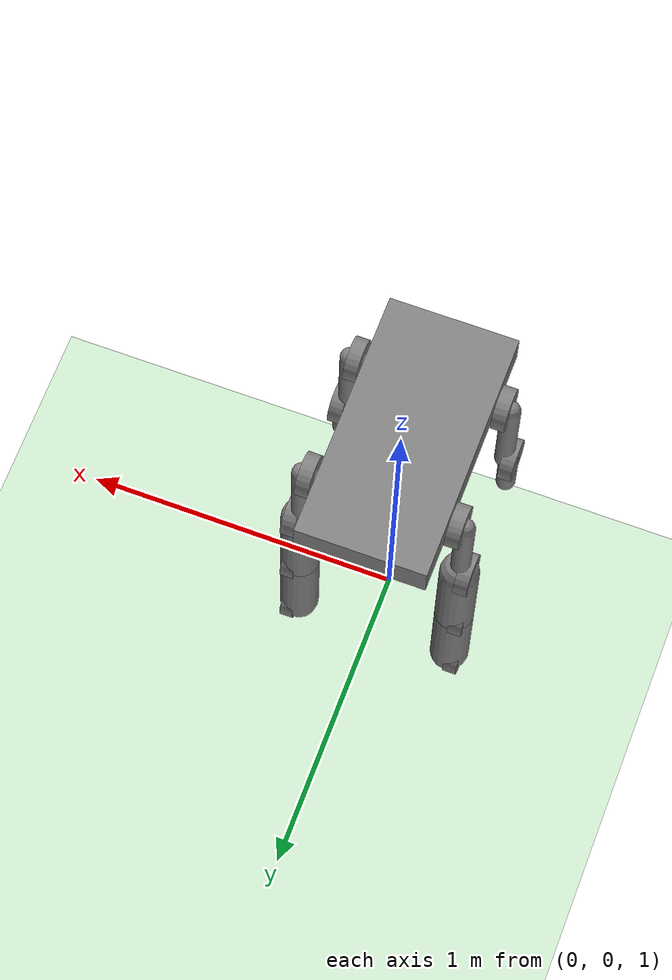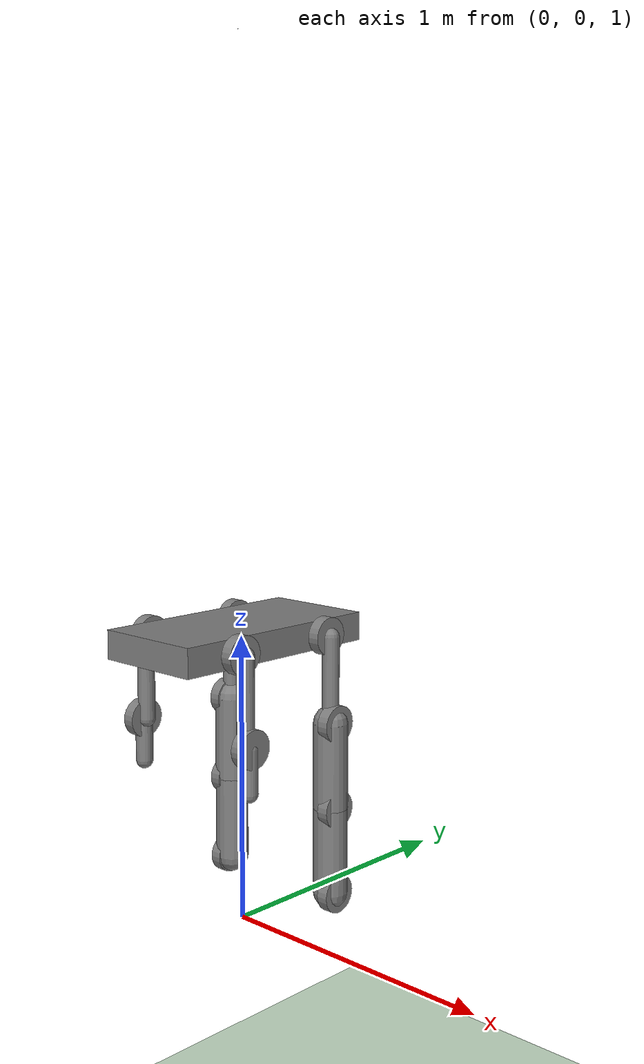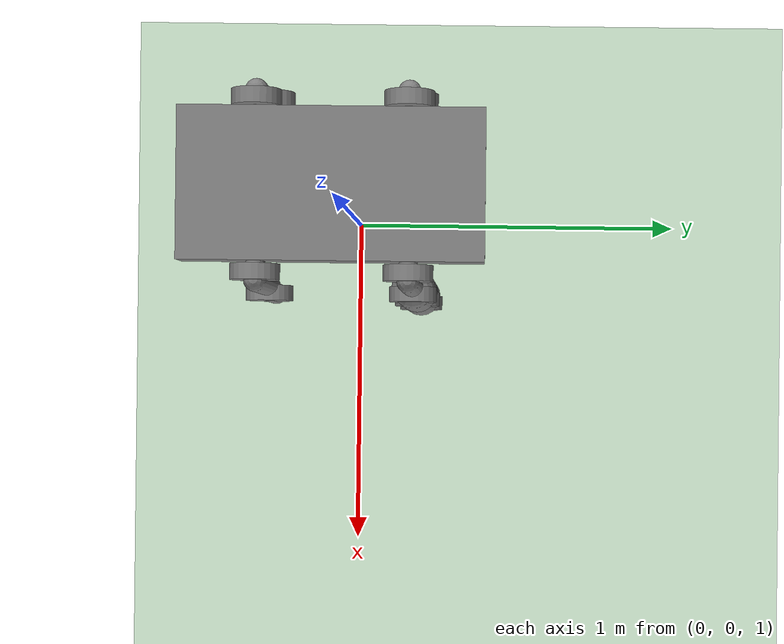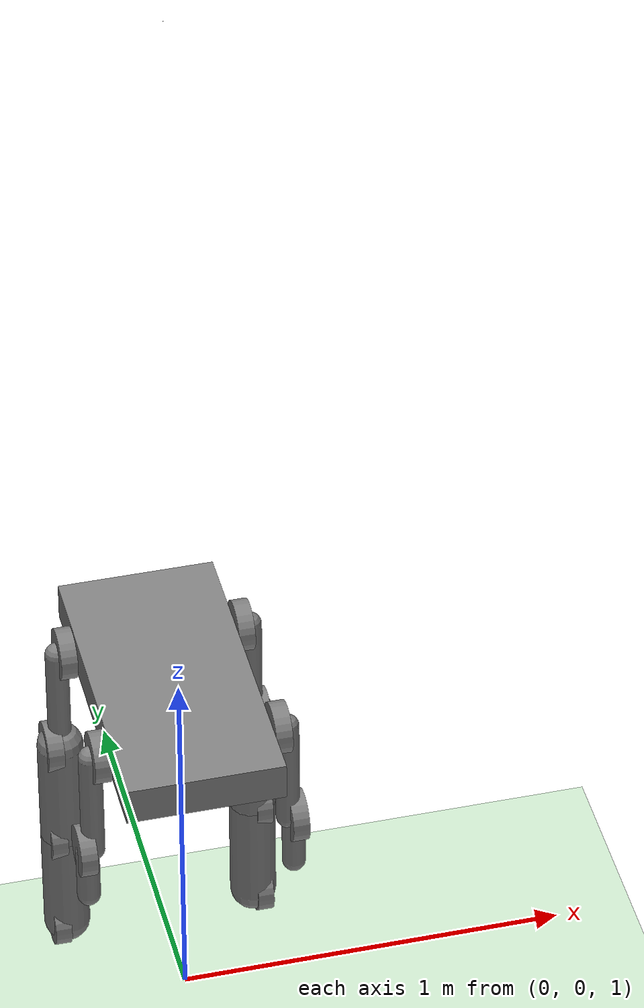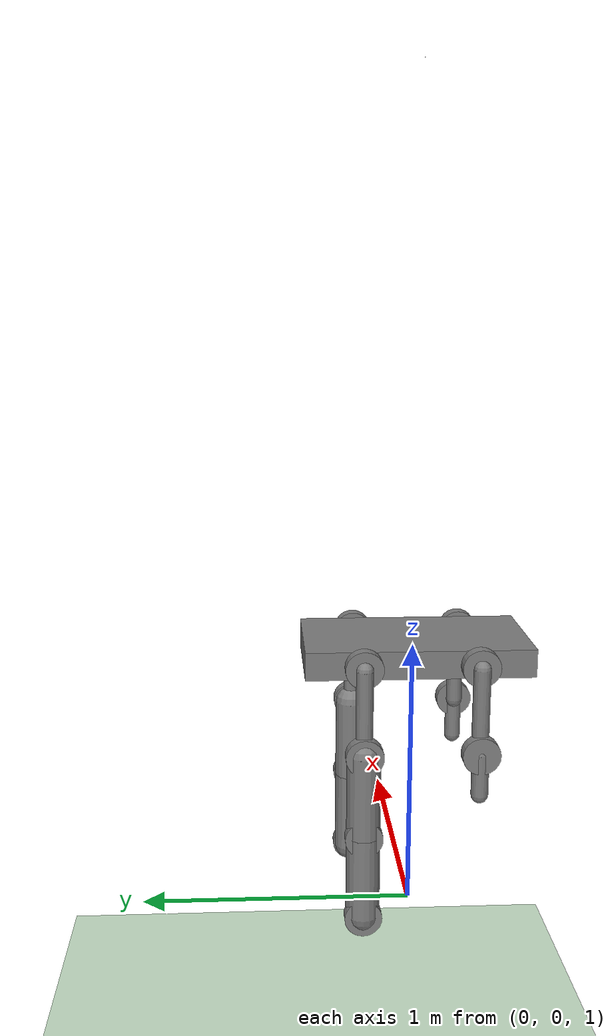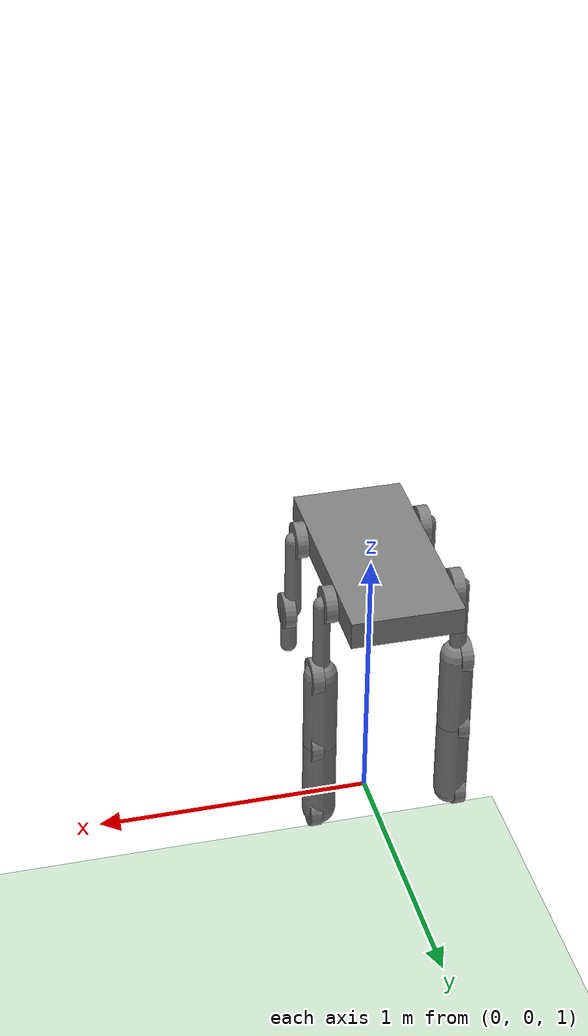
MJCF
<mujoco model="xmlrobot">
	<compiler />
	<option gravity="0 0 0" />
	<size nconmax="500" njmax="1000" />
	<custom />
	<default>
		<default class="body">
			<geom condim="1" friction="1.0 0.05 0.05" solimp=".9 .99 .003" solref=".015 1" type="capsule" />
			<joint armature=".006" damping="1.0" limited="true" stiffness="2" />
		</default>
		<default class="joint">
			<joint armature=".006" damping="1.0" limited="true" stiffness="2" />
		</default>
	</default>
	<asset>
		<texture builtin="gradient" height="100" rgb1="1 1 1" rgb2="0 0 0" type="skybox" width="100" />
		<texture builtin="flat" height="1278" mark="cross" markrgb="1 1 1" name="texgeom" random="0.01" rgb1="0.8 0.6 0.4" rgb2="0.8 0.6 0.4" type="cube" width="127" />
		<texture builtin="checker" height="100" name="texplane" rgb1="0 0 0" rgb2="0.8 0.8 0.8" type="2d" width="100" />
		<material name="MatPlane" reflectance="0.5" shininess="1" specular="1" texrepeat="60 60" texture="texplane" />
		<material name="geom" texture="texgeom" texuniform="true" />
	</asset>
	<worldbody>
		<light cutoff="100" diffuse="1 1 1" dir="0 0 -1.3" directional="true" exponent="1" pos="0 0 1.3" specular="0.1 0.1 0.1" />
		<geom conaffinity="1" condim="3" material="MatPlane" name="floor" pos="0 0 0" rgba="0.8 0.9 0.8 1" size="40 40 40" type="plane" />
		<body name="root" pos="0 0 2" quat="1.0 0.0 0.0 0.0">
			<geom name="geomroot" pos="0 0 2" quat="1.0 0.0 0.0 0.0" size="0.0005" type="sphere" />
			<body name="body1" pos="0 0 0" quat="1.0 0.0 0.0 0.0">
				<geom name="geombody1" pos="-0.02 0 0" quat="1.0 0.0 0.0 0.0" size="0.2 0.4 0.05" type="box" />
				<joint axis="1 0 0" class="joint" name="joint_joint1" pos="0 0 0" range="-0.0001 0.0001" type="hinge" />
				<body name="limbmount4" pos="0.1875 -0.2 0" quat="0.70711 0.0 0.70711 0.0">
					<geom fromto="0 0 0 0.025 0 0" name="geomlimbmount4" quat="1.0 0.0 0.0 0.0" size="0.025" type="capsule" />
					<joint axis="0 1 0" class="joint" name="joint_joint5" pos="0 0 0" range="-45 45" type="hinge" />
					<body name="limbmount4_new_new" pos="0 0 0" quat="0.70711 0.0 -0.70711 0.0">
						<geom euler="0 0 0" fromto="0 0 0 0.042 0 0" name="geomlimbmount4_new_new" pos="0 0 0" size="0.066" type="cylinder" />
						<joint axis="1 0 0" class="joint" name="joint_limbmount4_new" pos="0 0 0" range="-45 45" type="hinge" />
						<body name="limbmount4_new_new_new_new" pos="0.042 0 0" quat="0.70711 0.0 0.70711 0.0">
							<geom fromto="0 0 0 0.3 0 0" name="geomlimbmount4_new_new_new_new" quat="1.0 0.0 0.0 0.0" size="0.03" type="capsule" />
							<joint axis="0 1 0" class="joint" name="joint_limbmount4_new_new_new" pos="0 0 0" range="-0.1 0.1" type="hinge" />
							<body name="limbmount4_new_new_new_new_new_new" pos="0.3 0 0" quat="0.70711 0.0 -0.70711 0.0">
								<geom euler="0 0 0" fromto="0 0 0 0.042 0 0" name="geomlimbmount4_new_new_new_new_new_new" pos="0 0 0" size="0.066" type="cylinder" />
								<joint axis="1 0 0" class="joint" name="joint_limbmount4_new_new_new_new_new" pos="0 0 0" range="-45 45" type="hinge" />
								<body name="limbmount4_new_new_new_new_new_new_new_new" pos="0.015 0 0" quat="0.70711 0.0 0.70711 0.0">
									<geom fromto="0 0 0 0.15 0 0" name="geomlimbmount4_new_new_new_new_new_new_new_new" quat="1.0 0.0 0.0 0.0" size="0.03" type="capsule" />
									<joint axis="0 1 0" class="joint" name="joint_limbmount4_new_new_new_new_new_new_new" pos="0 0 0" range="-0.1 0.1" type="hinge" />
								</body>
							</body>
						</body>
					</body>
				</body>
				<body name="limbmount3" pos="-0.225 -0.2 0" quat="0.70711 0.0 0.70711 0.0">
					<geom fromto="0 0 0 0.025 0 0" name="geomlimbmount3" quat="-6.123233995736766e-17 1.0 0.0 0.0" size="0.025" type="capsule" />
					<joint axis="0 1 0" class="joint" name="joint_joint4" pos="0 0 0" range="-45 45" type="hinge" />
					<body name="motor1" pos="0 0 0" quat="-4.329780281177467e-17 0.7071067811865475 4.329780281177467e-17 -0.7071067811865477">
						<geom euler="0 0 0" fromto="0 0 0 0.042 0 0" name="geommotor1" pos="0 0 0" size="0.066" type="cylinder" />
						<joint axis="1 0 0" class="joint" name="joint_joint6" pos="0 0 0" range="-45 45" type="hinge" />
						<body name="limblink2" pos="0.042 0 0" quat="0.70711 0.0 0.70711 0.0">
							<geom fromto="0 0 0 0.3 0 0" name="geomlimblink2" quat="1.0 0.0 0.0 0.0" size="0.03" type="capsule" />
							<joint axis="0 1 0" class="joint" name="joint_joint9" pos="0 0 0" range="-0.1 0.1" type="hinge" />
							<body childclass="body" name="motor_link_end4" pos="0.3 0 0" quat="0.70711 0.0 -0.70711 0.0">
								<geom euler="0 0 0" fromto="0 0 0 0.042 0 0" name="geommotor_link_end4" pos="0 0 0" size="0.066" type="cylinder" />
								<joint axis="1 0 0" class="joint" name="joint_joint18" pos="0 0 0" range="-45 45" type="hinge" />
								<body name="short_limblink1" pos="0.015 0 0" quat="0.70711 0.0 0.70711 0.0">
									<geom fromto="0 0 0 0.15 0 0" name="geomshort_limblink1" quat="1.0 0.0 0.0 0.0" size="0.03" type="capsule" />
									<joint axis="0 1 0" class="joint" name="joint_joint20" pos="0 0 0" range="-0.1 0.1" type="hinge" />
								</body>
							</body>
						</body>
					</body>
				</body>
				<body name="limbmount2" pos="-0.225 0.2 0" quat="0.70711 0.0 0.70711 0.0">
					<geom fromto="0 0 0 0.025 0 0" name="geomlimbmount2" quat="-6.123233995736766e-17 1.0 0.0 0.0" size="0.025" type="capsule" />
					<joint axis="0 1 0" class="joint" name="joint_joint3" pos="0 0 0" range="-45 45" type="hinge" />
					<body name="limbmount2_new_new" pos="0 0 0" quat="-4.329780281177467e-17 0.7071067811865475 4.329780281177467e-17 -0.7071067811865477">
						<geom euler="0 0 0" fromto="0 0 0 0.042 0 0" name="geomlimbmount2_new_new" pos="0 0 0" size="0.066" type="cylinder" />
						<joint axis="1 0 0" class="joint" name="joint_limbmount2_new" pos="0 0 0" range="-45 45" type="hinge" />
						<body name="limbmount2_new_new_new_new" pos="0.042 0 0" quat="0.70711 0.0 0.70711 0.0">
							<geom fromto="0 0 0 0.3 0 0" name="geomlimbmount2_new_new_new_new" quat="1.0 0.0 0.0 0.0" size="0.03" type="capsule" />
							<joint axis="0 1 0" class="joint" name="joint_limbmount2_new_new_new" pos="0 0 0" range="-0.1 0.1" type="hinge" />
							<body name="limbmount2_new_new_new_new_new_new" pos="0.3 0 0" quat="0.70711 0.0 -0.70711 0.0">
								<geom euler="0 0 0" fromto="0 0 0 0.042 0 0" name="geomlimbmount2_new_new_new_new_new_new" pos="0 0 0" size="0.066" type="cylinder" />
								<joint axis="1 0 0" class="joint" name="joint_limbmount2_new_new_new_new_new" pos="0 0 0" range="-45 45" type="hinge" />
								<body name="limbmount2_new_new_new_new_new_new_new_new" pos="0 0 0" quat="0.70711 0.0 0.70711 0.0">
									<geom fromto="0 0 0 0.3 0 0" name="geomlimbmount2_new_new_new_new_new_new_new_new" quat="1.0 0.0 0.0 0.0" size="0.06" type="capsule" />
									<joint axis="0 1 0" class="joint" name="joint_limbmount2_new_new_new_new_new_new_new" pos="0 0 0" range="-0.1 0.1" type="hinge" />
									<body name="limbmount2_new_new_new_new_new_new_new_new_new_new" pos="0.3 0 0" quat="0.70711 0.0 -0.70711 0.0">
										<geom euler="0 0 0" fromto="0 0 0 0.042 0 0" name="geomlimbmount2_new_new_new_new_new_new_new_new_new_new" pos="0 0 0" size="0.066" type="cylinder" />
										<joint axis="1 0 0" class="joint" name="joint_limbmount2_new_new_new_new_new_new_new_new_new" pos="0 0 0" range="-45 45" type="hinge" />
										<body name="limbmount2_new_new_new_new_new_new_new_new_new_new_new_new" pos="0 0 0" quat="0.70711 0.0 0.70711 0.0">
											<geom fromto="0 0 0 0.3 0 0" name="geomlimbmount2_new_new_new_new_new_new_new_new_new_new_new_new" quat="1.0 0.0 0.0 0.0" size="0.06" type="capsule" />
											<joint axis="0 1 0" class="joint" name="joint_limbmount2_new_new_new_new_new_new_new_new_new_new_new" pos="0 0 0" range="-0.1 0.1" type="hinge" />
											<body name="limbmount2_new_new_new_new_new_new_new_new_new_new_new_new_new_new" pos="0.3 0 0" quat="0.70711 0.0 -0.70711 0.0">
												<geom euler="0 0 0" fromto="0 0 0 0.042 0 0" name="geomlimbmount2_new_new_new_new_new_new_new_new_new_new_new_new_new_new" pos="0 0 0" size="0.066" type="cylinder" />
												<joint axis="1 0 0" class="joint" name="joint_limbmount2_new_new_new_new_new_new_new_new_new_new_new_new_new" pos="0 0 0" range="-45 45" type="hinge" />
											</body>
										</body>
									</body>
								</body>
							</body>
						</body>
					</body>
				</body>
				<body name="limbmount1" pos="0.1875 0.2 0" quat="0.70711 0.0 0.70711 0.0">
					<geom fromto="0 0 0 0.025 0 0" name="geomlimbmount1" quat="1.0 0.0 0.0 0.0" size="0.025" type="capsule" />
					<joint axis="0 1 0" class="joint" name="joint_joint2" pos="0 0 0" range="-45 45" type="hinge" />
					<body name="motor2" pos="0 0 0" quat="0.70711 0.0 -0.70711 0.0">
						<geom euler="0 0 0" fromto="0 0 0 0.042 0 0" name="geommotor2" pos="0 0 0" size="0.066" type="cylinder" />
						<joint axis="1 0 0" class="joint" name="joint_joint7" pos="0 0 0" range="-45 45" type="hinge" />
						<body name="limblink1" pos="0.042 0 0" quat="0.70711 0.0 0.70711 0.0">
							<geom fromto="0 0 0 0.3 0 0" name="geomlimblink1" quat="1.0 0.0 0.0 0.0" size="0.03" type="capsule" />
							<joint axis="0 1 0" class="joint" name="joint_joint8" pos="0 0 0" range="-0.1 0.1" type="hinge" />
							<body childclass="body" name="motor_link_end1" pos="0.3 0 0" quat="0.70711 0.0 -0.70711 0.0">
								<geom euler="0 0 0" fromto="0 0 0 0.042 0 0" name="geommotor_link_end1" pos="0 0 0" size="0.066" type="cylinder" />
								<joint axis="1 0 0" class="joint" name="joint_joint11" pos="0 0 0" range="-45 45" type="hinge" />
								<body name="limblink3" pos="0 0 0" quat="0.70711 0.0 0.70711 0.0">
									<geom fromto="0 0 0 0.3 0 0" name="geomlimblink3" quat="1.0 0.0 0.0 0.0" size="0.06" type="capsule" />
									<joint axis="0 1 0" class="joint" name="joint_joint12" pos="0 0 0" range="-0.1 0.1" type="hinge" />
									<body childclass="body" name="motor_link_end3" pos="0.3 0 0" quat="0.70711 0.0 -0.70711 0.0">
										<geom euler="0 0 0" fromto="0 0 0 0.042 0 0" name="geommotor_link_end3" pos="0 0 0" size="0.066" type="cylinder" />
										<joint axis="1 0 0" class="joint" name="joint_joint16" pos="0 0 0" range="-45 45" type="hinge" />
										<body name="limblink8" pos="0 0 0" quat="0.70711 0.0 0.70711 0.0">
											<geom fromto="0 0 0 0.3 0 0" name="geomlimblink8" quat="1.0 0.0 0.0 0.0" size="0.06" type="capsule" />
											<joint axis="0 1 0" class="joint" name="joint_joint21" pos="0 0 0" range="-0.1 0.1" type="hinge" />
											<body childclass="body" name="motor_link_end6" pos="0.3 0 0" quat="0.70711 0.0 -0.70711 0.0">
												<geom euler="0 0 0" fromto="0 0 0 0.042 0 0" name="geommotor_link_end6" pos="0 0 0" size="0.066" type="cylinder" />
												<joint axis="1 0 0" class="joint" name="joint_joint23" pos="0 0 0" range="-45 45" type="hinge" />
											</body>
										</body>
									</body>
								</body>
							</body>
						</body>
					</body>
				</body>
			</body>
		</body>
	</worldbody>
	<actuator>
		<motor ctrllimited="true" ctrlrange="-1 1" gear="22.5" joint="joint_joint1" />
		<motor ctrllimited="true" ctrlrange="-1 1" gear="22.5" joint="joint_joint5" />
		<motor ctrllimited="true" ctrlrange="-1.2 1.2" gear="22.5" joint="joint_limbmount4_new" />
		<motor ctrllimited="true" ctrlrange="-1 1" gear="22.5" joint="joint_limbmount4_new_new_new" />
		<motor ctrllimited="true" ctrlrange="-1.2 1.2" gear="22.5" joint="joint_limbmount4_new_new_new_new_new" />
		<motor ctrllimited="true" ctrlrange="-1 1" gear="22.5" joint="joint_limbmount4_new_new_new_new_new_new_new" />
		<motor ctrllimited="true" ctrlrange="-1 1" gear="22.5" joint="joint_joint4" />
		<motor ctrllimited="true" ctrlrange="-1.2 1.2" gear="22.5" joint="joint_joint6" />
		<motor ctrllimited="true" ctrlrange="-1 1" gear="22.5" joint="joint_joint9" />
		<motor ctrllimited="true" ctrlrange="-1.2 1.2" gear="22.5" joint="joint_joint18" />
		<motor ctrllimited="true" ctrlrange="-1 1" gear="22.5" joint="joint_joint20" />
		<motor ctrllimited="true" ctrlrange="-1 1" gear="22.5" joint="joint_joint3" />
		<motor ctrllimited="true" ctrlrange="-1.2 1.2" gear="22.5" joint="joint_limbmount2_new" />
		<motor ctrllimited="true" ctrlrange="-1 1" gear="22.5" joint="joint_limbmount2_new_new_new" />
		<motor ctrllimited="true" ctrlrange="-1.2 1.2" gear="22.5" joint="joint_limbmount2_new_new_new_new_new" />
		<motor ctrllimited="true" ctrlrange="-1 1" gear="22.5" joint="joint_limbmount2_new_new_new_new_new_new_new" />
		<motor ctrllimited="true" ctrlrange="-1.2 1.2" gear="22.5" joint="joint_limbmount2_new_new_new_new_new_new_new_new_new" />
		<motor ctrllimited="true" ctrlrange="-1 1" gear="22.5" joint="joint_limbmount2_new_new_new_new_new_new_new_new_new_new_new" />
		<motor ctrllimited="true" ctrlrange="-1.2 1.2" gear="22.5" joint="joint_limbmount2_new_new_new_new_new_new_new_new_new_new_new_new_new" />
		<motor ctrllimited="true" ctrlrange="-1 1" gear="22.5" joint="joint_joint2" />
		<motor ctrllimited="true" ctrlrange="-1.2 1.2" gear="22.5" joint="joint_joint7" />
		<motor ctrllimited="true" ctrlrange="-1 1" gear="22.5" joint="joint_joint8" />
		<motor ctrllimited="true" ctrlrange="-1.2 1.2" gear="22.5" joint="joint_joint11" />
		<motor ctrllimited="true" ctrlrange="-1 1" gear="22.5" joint="joint_joint12" />
		<motor ctrllimited="true" ctrlrange="-1.2 1.2" gear="22.5" joint="joint_joint16" />
		<motor ctrllimited="true" ctrlrange="-1 1" gear="22.5" joint="joint_joint21" />
		<motor ctrllimited="true" ctrlrange="-1.2 1.2" gear="22.5" joint="joint_joint23" />
	</actuator>
</mujoco>
